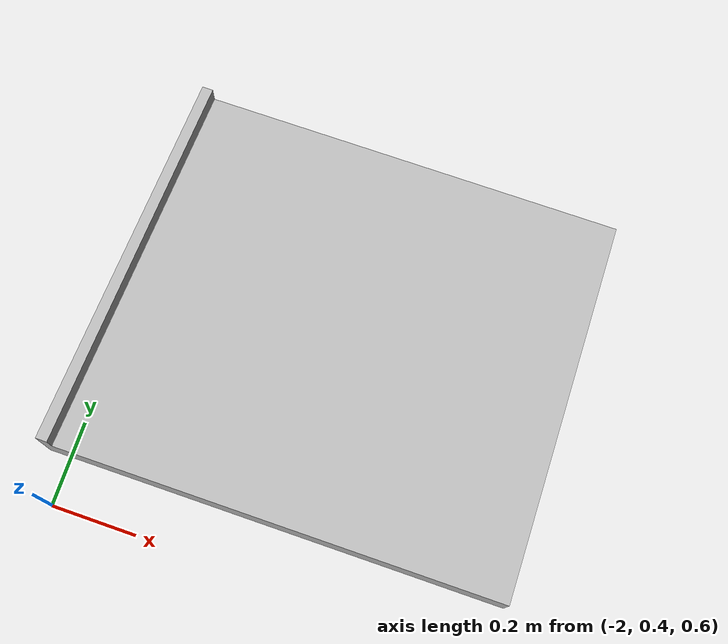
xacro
<?xml version="1.0"?>
<robot name="ramp" xmlns:xacro="http://ros.org/wiki/xacro">

  <link name="base_link">
    <inertial>
      <origin xyz="-1.4999999999999998 0.9500000000000002 0.7499999999999999" rpy="0 0 0"/>
      <mass value="706.4999999999998"/>
      <inertia ixx="50.6325" iyy="61.81875" izz="106.56375" ixy="0.0" iyz="10.5975" ixz="0.0"/>
    </inertial>
    <visual>
      <origin xyz="0 0 0" rpy="0 0 0"/>
      <geometry>
        <mesh filename="package://conveyor_belt/meshes/elements/ramp_base_link.stl" scale="0.001 0.001 0.001"/>
      </geometry>
      <material name="silver">
        <color rgba="0.7 0.7 0.7 1.0"/>
      </material>
    </visual>
    <collision>
      <origin xyz="0 0 0" rpy="0 0 0"/>
      <geometry>
        <mesh filename="package://conveyor_belt/meshes/elements/ramp_base_link.stl" scale="0.001 0.001 0.001"/>
      </geometry>
    </collision>
  </link>

  <gazebo>
    <static>true</static>
  </gazebo>

</robot>
